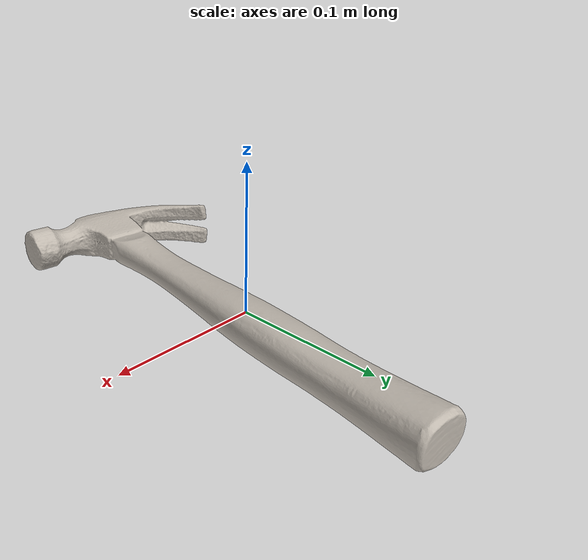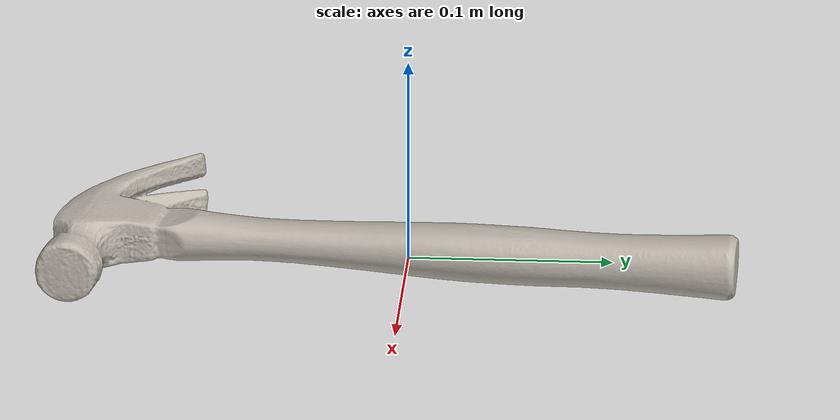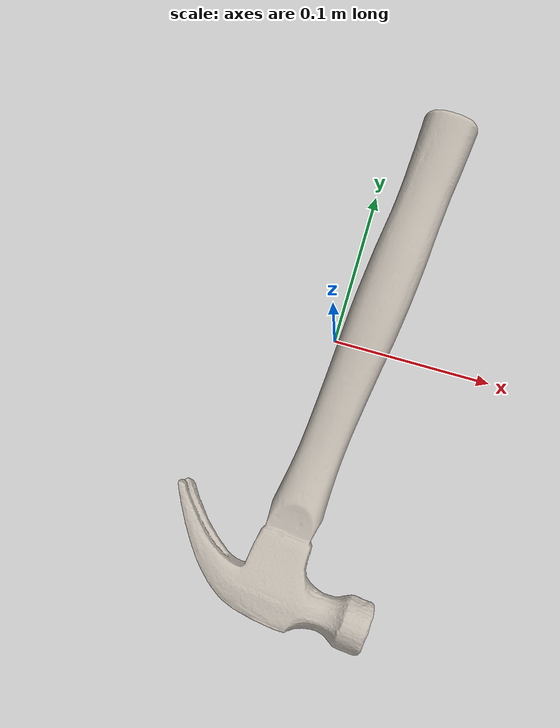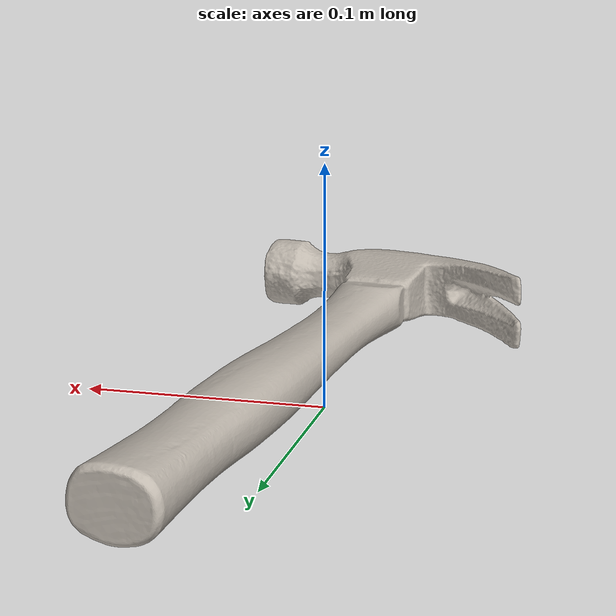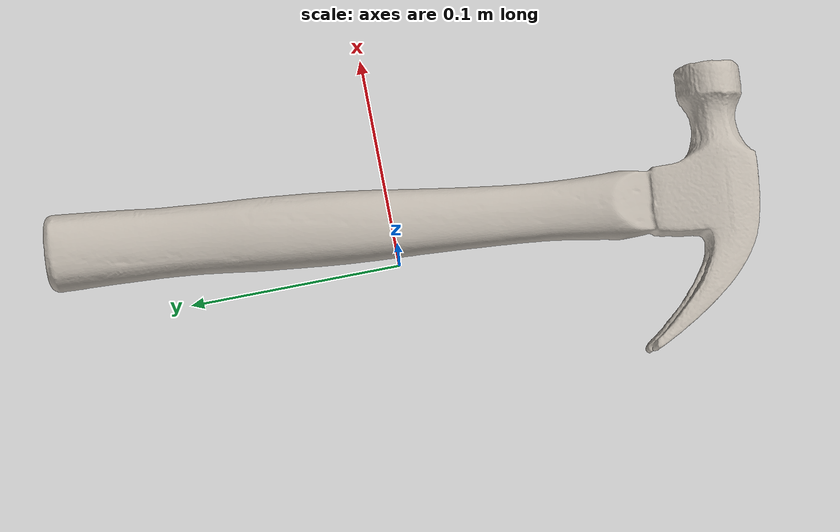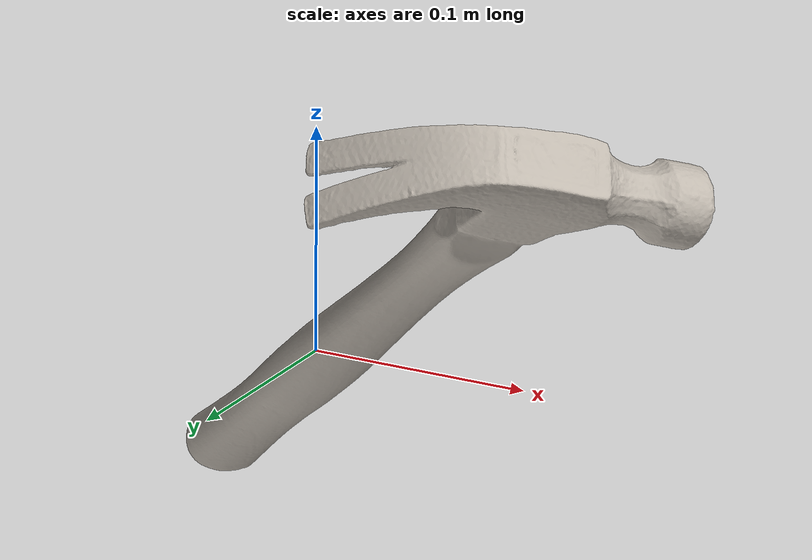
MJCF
<mujoco model="hammer">
  <asset>
    <mesh name="hammer_vis" file="meshes/hammer_vis.obj" />
    <mesh name="hammer_mesh1" file="meshes/hammer_parts/hammer1.obj" />
    <mesh name="hammer_mesh2" file="meshes/hammer_parts/hammer2.obj" />
    <mesh name="hammer_mesh3" file="meshes/hammer_parts/hammer3.obj" />
    <mesh name="hammer_mesh4" file="meshes/hammer_parts/hammer4.obj" />
    <mesh name="hammer_mesh5" file="meshes/hammer_parts/hammer5.obj" />
    <mesh name="hammer_mesh6" file="meshes/hammer_parts/hammer6.obj" />
    <mesh name="hammer_mesh7" file="meshes/hammer_parts/hammer7.obj" />
    <mesh name="hammer_mesh8" file="meshes/hammer_parts/hammer8.obj" />
    <mesh name="hammer_mesh9" file="meshes/hammer_parts/hammer9.obj" />
    <texture name="hammer_tex" file="textures/hammer.png" type="2d" />
    <material name="hammer_mat" texture="hammer_tex" texuniform="true" specular="0.2" shininess="0.3" reflectance="0.5" />
  </asset>

  <worldbody>
    <body>
      <body name="object">
        <geom name="body"
              mesh="hammer_vis" type="mesh" material="hammer_mat" contype="0" conaffinity="0" group="1" />
        <geom mesh="hammer_mesh1" type="mesh" solimp="0.998 0.998 0.001" solref="0.001 1"
              density="1000" friction="1.0 0.3 0.1" material="hammer_mat"
              group="0" condim="4" contype="1" conaffinity="1" rgba="0 0 0 0"/>
        <geom mesh="hammer_mesh2" type="mesh" solimp="0.998 0.998 0.001" solref="0.001 1"
              density="1000" friction="1.0 0.3 0.1" material="hammer_mat"
              group="0" condim="4" contype="1" conaffinity="1" rgba="0 0 0 0"/>
        <geom mesh="hammer_mesh3" type="mesh" solimp="0.998 0.998 0.001" solref="0.001 1"
              density="1000" friction="1.0 0.3 0.1" material="hammer_mat"
              group="0" condim="4" contype="1" conaffinity="1" rgba="0 0 0 0"/>
        <geom mesh="hammer_mesh4" type="mesh" solimp="0.998 0.998 0.001" solref="0.001 1"
              density="1000" friction="1.0 0.3 0.1" material="hammer_mat"
              group="0" condim="4" contype="1" conaffinity="1" rgba="0 0 0 0"/>
        <geom mesh="hammer_mesh5" type="mesh" solimp="0.998 0.998 0.001" solref="0.001 1"
              density="1000" friction="1.0 0.3 0.1" material="hammer_mat"
              group="0" condim="4" contype="1" conaffinity="1" rgba="0 0 0 0"/>
        <geom mesh="hammer_mesh6" type="mesh" solimp="0.998 0.998 0.001" solref="0.001 1"
              density="1000" friction="1.0 0.3 0.1" material="hammer_mat"
              group="0" condim="4" contype="1" conaffinity="1" rgba="0 0 0 0"/>
        <geom mesh="hammer_mesh7" type="mesh" solimp="0.998 0.998 0.001" solref="0.001 1"
              density="1000" friction="1.0 0.3 0.1" material="hammer_mat"
              group="0" condim="4" contype="1" conaffinity="1" rgba="0 0 0 0"/>
        <geom mesh="hammer_mesh8" type="mesh" solimp="0.998 0.998 0.001" solref="0.001 1"
              density="1000" friction="1.0 0.3 0.1" material="hammer_mat"
              group="0" condim="4" contype="1" conaffinity="1" rgba="0 0 0 0"/>
        <geom mesh="hammer_mesh9" type="mesh" solimp="0.998 0.998 0.001" solref="0.001 1"
              density="1000" friction="1.0 0.3 0.1" material="hammer_mat"
              group="0" condim="4" contype="1" conaffinity="1" rgba="0 0 0 0"/>
        <site name="grasp_0" pos="0.0256 0.0729 0.0151" quat="-0.0617 0.7343 -0.6727 -0.0673" size="0.005" rgba="0 1 0 0.5"/>
        <site name="grasp_1" pos="0.0200 0.0045 0.0118" quat="-0.0617 0.7343 -0.6727 -0.0673" size="0.005" rgba="0 1 0 0.5"/>
        <site name="grasp_2" pos="0.0333 0.1336 0.0069" quat="-0.0617 0.7343 -0.6727 -0.0673" size="0.005" rgba="0 1 0 0.5"/>
      </body>
      <site name="horizontal_radius_site" pos="0 0.16 0" size="0.005" rgba="0 0 0 0"/>
      <site name="top_site" pos="0 0 0.03" size="0.005" rgba="0 0 0 0"/>
      <site name="bottom_site" pos="0 0 -0.01" size="0.005" rgba="0 0 0 0"/>
    </body>
  </worldbody>
</mujoco>
